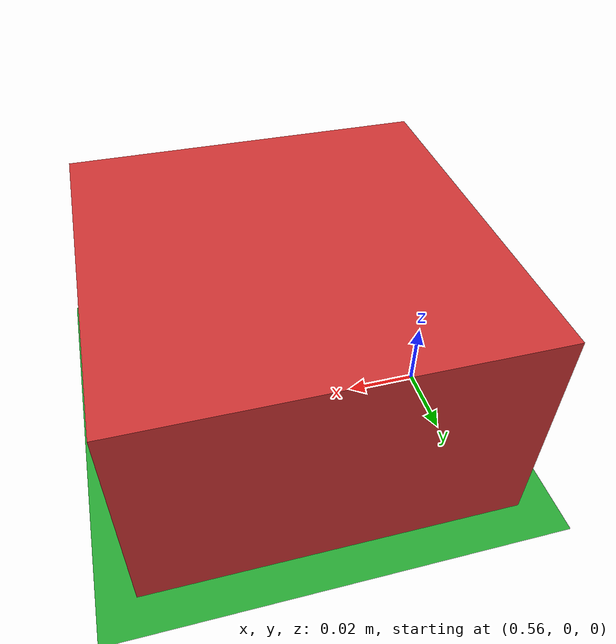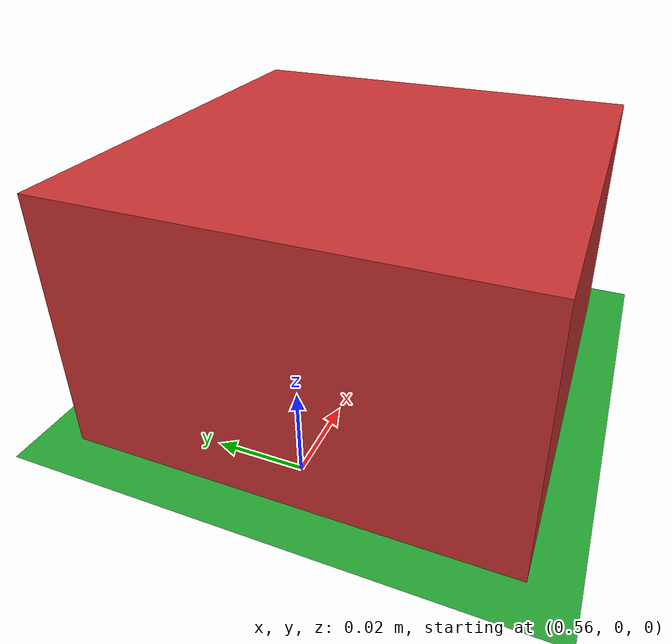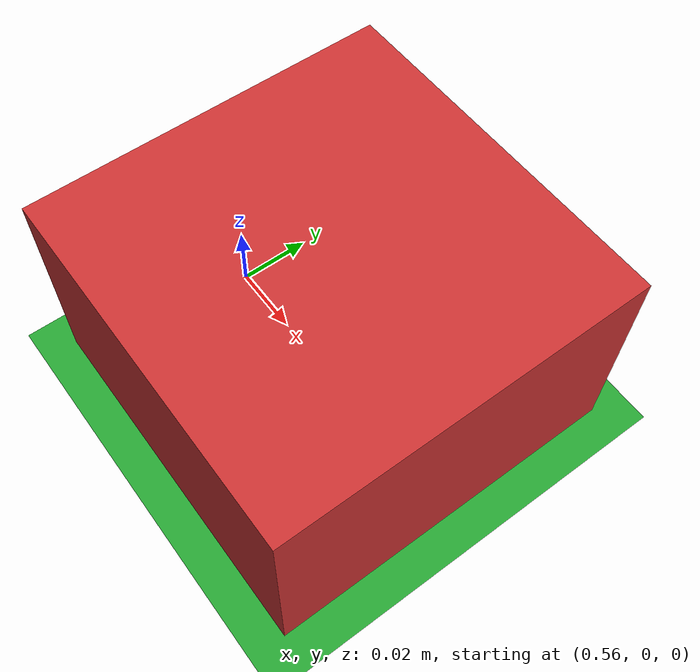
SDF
<?xml version="1.0" ?>
<sdf version="1.6">
  <world name="hexapod_test_world">

    <!-- Fizyczne parametry świata -->
    <physics type="ode">
      <max_step_size>0.001</max_step_size>      <!-- 1 kHz -->
      <real_time_factor>1.0</real_time_factor>
    </physics>

    <!-- Światło + klasyczne podłoże (dla /clock) -->
    <include><uri>model://sun</uri></include>
    <include><uri>model://ground_plane</uri><name>grip_ground_base</name></include>

    <!-- Nakładamy drugi „gumowy” plane z dużym tarciem -->
    <model name="grip_ground">
      <static>true</static>
      <link name="link">
        <collision name="collision">
          <geometry>
            <plane><normal>0 0 1</normal><size>100 100</size></plane>
          </geometry>
          <surface>
            <friction>
              <ode>
                <mu>5.0</mu>
                <mu2>5.0</mu2>
              </ode>
            </friction>
          </surface>
        </collision>
        <visual name="visual">
          <geometry>
            <plane><normal>0 0 1</normal><size>100 100</size></plane>
          </geometry>
          <material>
            <script>
              <uri>file://media/materials/scripts/gazebo.material</uri>
              <name>Gazebo/DarkGreen</name>
            </script>
          </material>
        </visual>
      </link>
    </model>

    <!-- (opcjonalnie) mała przeszkoda -->
    <model name="box_obstacle">
      <static>true</static>
      <pose>0.6 0 0.03 0 0 0</pose>
      <link name="link">
        <inertial><mass>1</mass></inertial>
        <collision name="c">
          <geometry><box><size>0.1 0.1 0.06</size></box></geometry>
        </collision>
        <visual name="v">
          <geometry><box><size>0.1 0.1 0.06</size></box></geometry>
          <material><ambient>0.8 0.2 0.2 1</ambient></material>
        </visual>
      </link>
    </model>

  </world>
</sdf>
